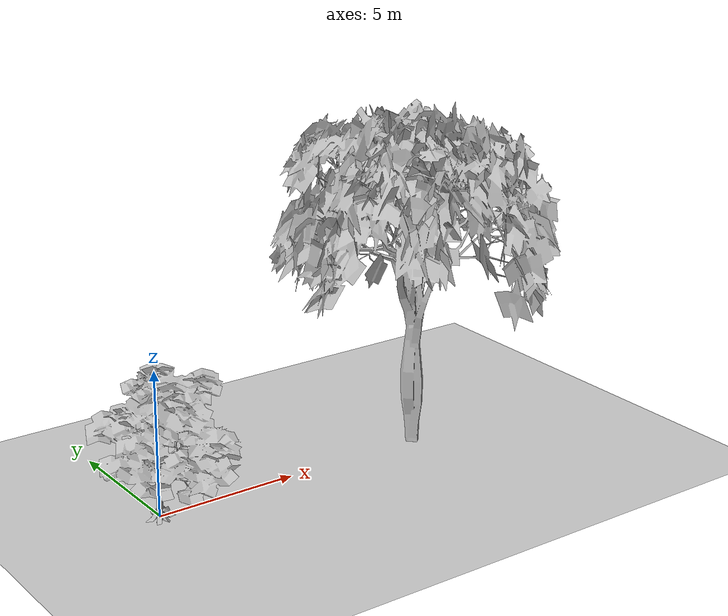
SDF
<sdf version="1.9">
  <world name="default">
    <physics type="ode">
      <max_step_size>0.004</max_step_size>
      <real_time_factor>1.0</real_time_factor>
      <real_time_update_rate>250</real_time_update_rate>
    </physics>
    <plugin name="gz::sim::systems::Physics" filename="gz-sim-physics-system" />
    <plugin name="gz::sim::systems::UserCommands" filename="gz-sim-user-commands-system" />
    <plugin name="gz::sim::systems::SceneBroadcaster" filename="gz-sim-scene-broadcaster-system" />
    <plugin name="gz::sim::systems::Contact" filename="gz-sim-contact-system" />
    <plugin name="gz::sim::systems::Imu" filename="gz-sim-imu-system" />
    <plugin name="gz::sim::systems::AirPressure" filename="gz-sim-air-pressure-system" />
    <plugin name="gz::sim::systems::ApplyLinkWrench" filename="gz-sim-apply-link-wrench-system" />
    <plugin name="gz::sim::systems::Sensors" filename="gz-sim-sensors-system">
      <render_engine>ogre2</render_engine>
    </plugin>
    <gui fullscreen="false">
      <plugin name="3D View" filename="GzScene3D">
        <gz-gui>
          <title>3D View</title>
          <property type="bool" key="showTitleBar">0</property>
          <property type="string" key="state">docked</property>
        </gz-gui>
        <engine>ogre2</engine>
        <scene>scene</scene>
        <ambient_light>0.5984631152222222 0.5984631152222222 0.5984631152222222</ambient_light>
        <background_color>0.8984631152222222 0.8984631152222222 0.8984631152222222</background_color>
        <camera_pose>-6 0 6 0 0.5 0</camera_pose>
      </plugin>
      <plugin name="World control" filename="WorldControl">
        <gz-gui>
          <title>World control</title>
          <property type="bool" key="showTitleBar">0</property>
          <property type="bool" key="resizable">0</property>
          <property type="double" key="height">72</property>
          <property type="double" key="width">121</property>
          <property type="double" key="z">1</property>
          <property type="string" key="state">floating</property>
          <anchors target="3D View">
            <line own="left" target="left" />
            <line own="bottom" target="bottom" />
          </anchors>
        </gz-gui>
        <play_pause>1</play_pause>
        <step>1</step>
        <start_paused>1</start_paused>
      </plugin>
      <plugin name="World stats" filename="WorldStats">
        <gz-gui>
          <title>World stats</title>
          <property type="bool" key="showTitleBar">0</property>
          <property type="bool" key="resizable">0</property>
          <property type="double" key="height">110</property>
          <property type="double" key="width">290</property>
          <property type="double" key="z">1</property>
          <property type="string" key="state">floating</property>
          <anchors target="3D View">
            <line own="right" target="right" />
            <line own="bottom" target="bottom" />
          </anchors>
        </gz-gui>
        <sim_time>1</sim_time>
        <real_time>1</real_time>
        <real_time_factor>1</real_time_factor>
        <iterations>1</iterations>
      </plugin>
      <plugin name="Entity tree" filename="EntityTree" />
    </gui>
    <gravity>0 0 -9.8</gravity>
    <magnetic_field>6e-06 2.3e-05 -4.2e-05</magnetic_field>
    <atmosphere type="adiabatic" />
    <scene>
      <grid>false</grid>
      <ambient>0.4 0.4 0.4 1</ambient>
      <background>0.7 0.7 0.7 1</background>
      <shadows>true</shadows>
    </scene>
    <model name="ground_plane">
      <static>true</static>
      <link name="link">
        <collision name="collision">
          <geometry>
            <plane>
              <normal>0 0 1</normal>
              <size>1 1</size>
            </plane>
          </geometry>
          <surface>
            <friction>
              <ode />
            </friction>
            <bounce />
            <contact />
          </surface>
        </collision>

        <visual name="visual">
          <geometry>
            <plane>
              <normal>0 0 1</normal>
              <size>100 100</size>
            </plane>
            <mesh>
              <uri>file://grass_plane/meshes/grass_plane.dae</uri>
            </mesh>
          </geometry>
          <material>
            <ambient>0.8 0.8 0.8 1</ambient>
            <diffuse>0.8 0.8 0.8 1</diffuse>
            <specular>0.8 0.8 0.8 1</specular>
          </material>
        </visual>
        <pose>0 0 0 0 -0 0</pose>
        <inertial>
          <pose>0 0 0 0 -0 0</pose>
          <mass>1</mass>
          <inertia>
            <ixx>1</ixx>
            <ixy>0</ixy>
            <ixz>0</ixz>
            <iyy>1</iyy>
            <iyz>0</iyz>
            <izz>1</izz>
          </inertia>
        </inertial>
        <enable_wind>false</enable_wind>
      </link>
      <pose>0 0 0 0 -0 0</pose>
      <self_collide>false</self_collide>
    </model>
    <light name="sunUTC" type="directional">
      <pose>0 0 500 0 -0 0</pose>
      <cast_shadows>true</cast_shadows>
      <intensity>1</intensity>
      <direction>0.001 0.625 -0.78</direction>
      <diffuse>0.904 0.904 0.904 1</diffuse>
      <specular>0.271 0.271 0.271 1</specular>
      <attenuation>
        <range>2000</range>
        <linear>0</linear>
        <constant>1</constant>
        <quadratic>0</quadratic>
      </attenuation>
      <spot>
        <inner_angle>0</inner_angle>
        <outer_angle>0</outer_angle>
        <falloff>0</falloff>
      </spot>
    </light>
  <include><uri>model://tree_1</uri><pose>0 0 0 1.5708 0 0</pose></include>
  <include><uri>model://tree_2</uri><pose>10 0 0 1.5708 0 0</pose></include></world>

</sdf>

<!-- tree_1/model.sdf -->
<sdf version="1.5">
  <model name="Tree 1">
    <static>true</static>
    <pose frame=''>0 0 0 1.57079 0 0</pose>
    <link name="link">
      <pose frame=''>0 0 0 0 0 0</pose>
      <collision name="collision">
        <geometry>
          <mesh>
            <scale>5 5 5</scale>
            <uri>model://tree_1/meshes/tree_1.obj</uri>
          </mesh>
        </geometry>
      </collision>
      <visual name="visual">
        <geometry>
          <mesh>

            <scale>5 5 5</scale>
            <uri>model://tree_1/meshes/tree_1.obj</uri>
          </mesh>
        </geometry>
      </visual>
    </link>
  </model>
</sdf>

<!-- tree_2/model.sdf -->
<sdf version="1.5">
  <model name="Tree 2">
    <static>true</static>
    <pose frame=''>0 0 0 1.57079 0 0</pose>
    <link name="link">
      <pose frame=''>0 0 0 0 0 0</pose>
      <collision name="collision">
        <geometry>
          <mesh>
            <scale>5 5 5</scale>
            <uri>model://tree_2/meshes/tree_2.obj</uri>
          </mesh>
        </geometry>
      </collision>
      <visual name="visual">
        <geometry>
          <mesh>

            <scale>5 5 5</scale>
            <uri>model://tree_2/meshes/tree_2.obj</uri>
          </mesh>
        </geometry>
      </visual>
    </link>
  </model>
</sdf>
